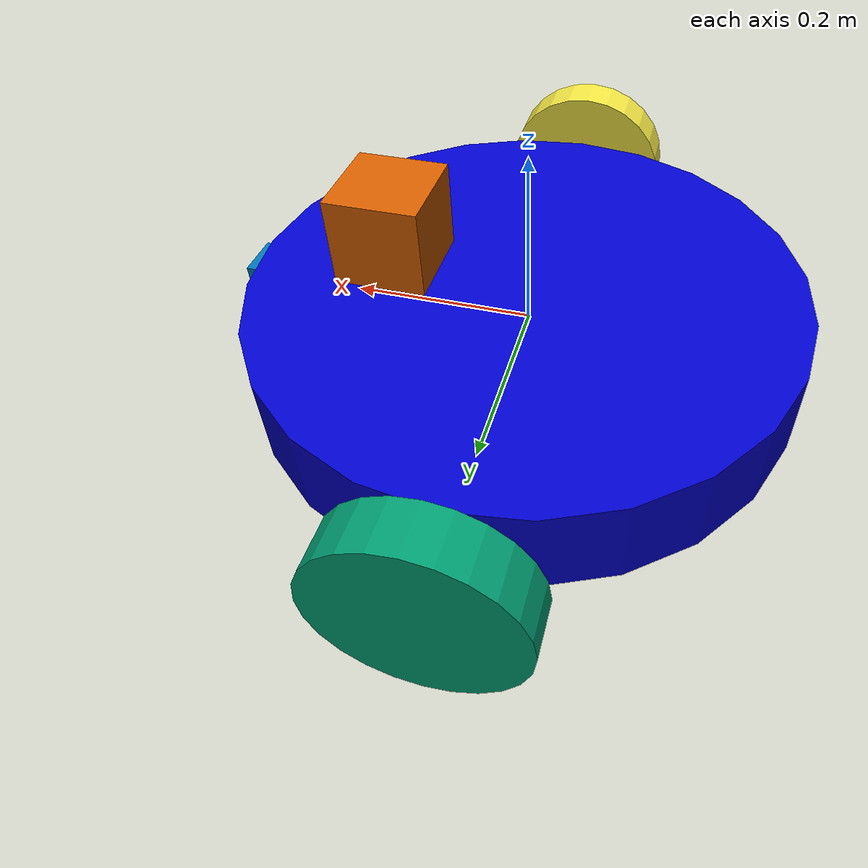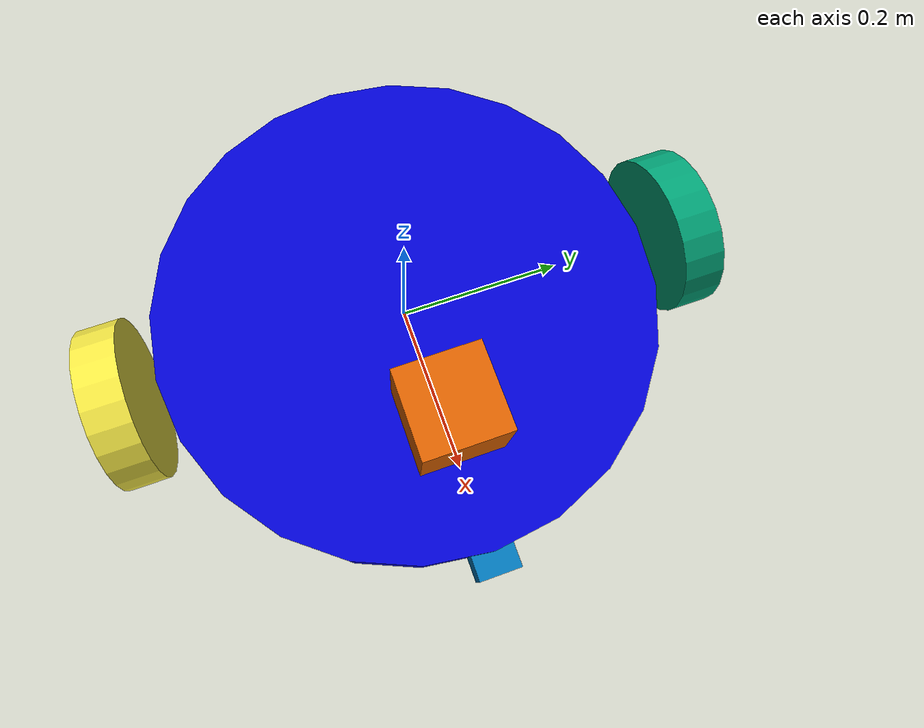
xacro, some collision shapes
<?xml version='1.0'?>

<robot name="project_robot" xmlns:xacro="http://www.ros.org/wiki/xacro">
  <xacro:include filename="$(find my_robot)/urdf/project_robot.gazebo" />

  <link name="robot_footprint"></link>

  <joint name="robot_footprint_joint" type="fixed">
    <origin xyz="0 0 0" rpy="0 0 0" />
    <parent link="robot_footprint" />
    <child link="chassis" />
  </joint>

  <link name="chassis">
    <pose>0 0 0.1 0 0 0</pose>

    <gazebo reference="chassis">
      <material>Gazebo/Blue</material>
    </gazebo>

    <inertial>
      <mass value="15.0"/>
      <origin xyz="0.0 0 0" rpy="0 0 0" />
      <inertia
        ixx="0.1" ixy="0" ixz="0"
        iyy="0.1" iyz="0"
        izz="0.1"
      />
    </inertial>

    <collision name="collision">
     <origin xyz="0 0 0" rpy="0 0 0" />
     <geometry>
       <cylinder length="0.1" radius="0.3"/>
     </geometry>
    </collision>

    <visual name="chassis_visual">
      <origin xyz="0 0 0" rpy="0 0 0" />
      <geometry>
        <cylinder length="0.1" radius="0.3"/>
      </geometry>
      <material name="blue">
        <color rgba="0 0 0.8 1" />
      </material>
    </visual>

    <collision name="back_left_caster_collision">
      <origin xyz="-0.1 -0.15 -0.05" rpy="0 0 0" />
      <geometry>
        <sphere radius="0.0499"/>
      </geometry>
    </collision>

    <visual name="back_left_caster_visual">
      <origin xyz="-0.1 -0.15 -0.05" rpy="0 0 0" />
      <geometry>
        <sphere radius="0.05"/>
      </geometry>
    </visual>

    <collision name="back_right_caster_collision">
      <origin xyz="-0.1 0.15 -0.05" rpy="0 0 0" />
      <geometry>
        <sphere radius="0.0499"/>
      </geometry>
    </collision>

    <visual name="back_right_caster_visual">
      <origin xyz="-0.1 0.15 -0.05" rpy="0 0 0" />
      <geometry>
        <sphere radius="0.05"/>
      </geometry>
    </visual>

    <collision name="front_left_caster_collision">
      <origin xyz="0.1 -0.15 -0.05" rpy="0 0 0" />
      <geometry>
        <sphere radius="0.0499"/>
      </geometry>
    </collision>

    <visual name="front_left_caster_visual">
      <origin xyz="0.1 -0.15 -0.05" rpy="0 0 0" />
      <geometry>
        <sphere radius="0.05"/>
      </geometry>
    </visual>

    <collision name="front_right_caster_collision">
      <origin xyz="0.1 0.15 -0.05" rpy="0 0 0" />
      <geometry>
        <sphere radius="0.0499"/>
      </geometry>
    </collision>

    <visual name="front_right_caster_visual">
      <origin xyz="0.1 0.15 -0.05" rpy="0 0 0" />
      <geometry>
        <sphere radius="0.05"/>
      </geometry>
    </visual>

  </link>

  <link name="left_wheel">
    <inertial>
      <origin xyz="0 0 0" rpy="0 1.5707 1.5707"/>
      <mass value="5"/>
      <inertia
          ixx="0.1" ixy="0" ixz="0"
          iyy="0.1" iyz="0"
          izz="0.1"
      />
    </inertial>

    <visual name="left_wheel_visual">
      <origin xyz="0 0 0" rpy="0 1.5707 1.5707"/>
      <geometry>
        <cylinder radius="0.1" length="0.05"/>
      </geometry>
    </visual>

    <collision name="left_wheel_collision">
      <origin xyz="0 0 0" rpy="0 1.5707 1.5707"/>
      <geometry>
        <cylinder radius="0.1" length="0.05"/>
      </geometry>
    </collision>

  </link>

  <link name="right_wheel">
    <inertial>
      <origin xyz="0 0 0" rpy="0 1.5707 1.5707"/>
      <mass value="5"/>
      <inertia
          ixx="0.1" ixy="0" ixz="0"
          iyy="0.1" iyz="0"
          izz="0.1"
      />
    </inertial>

    <visual name="right_wheel_visual">
      <origin xyz="0 0 0" rpy="0 1.5707 1.5707"/>
      <geometry>
        <cylinder radius="0.1" length="0.05"/>
      </geometry>
    </visual>

    <collision name="right_wheel_collision">
      <origin xyz="0 0 0" rpy="0 1.5707 1.5707"/>
      <geometry>
        <cylinder radius="0.1" length="0.05"/>
      </geometry>
    </collision>
  </link>
  <joint type="continuous" name="left_wheel_hinge">
    <origin xyz="0 0.35 0" rpy="0 0 0"/>
    <child link="left_wheel"/>
    <parent link="chassis"/>
    <axis xyz="0 1 0" rpy="0 0 0"/>
    <limit effort="10000" velocity="1000"/>
    <dynamics damping="1.0" friction="1.0"/>
  </joint>

  <joint type="continuous" name="right_wheel_hinge">
    <origin xyz="0 -0.35 0" rpy="0 0 0"/>
    <child link="right_wheel"/>
    <parent link="chassis"/>
    <axis xyz="0 1 0" rpy="0 0 0"/>
    <limit effort="10000" velocity="1000"/>
    <dynamics damping="1.0" friction="1.0"/>
  </joint>

  <link name="camera">
    <inertial>
      <origin xyz="0 0 0" rpy="0 0 0"/>
      <mass value="0.1"/>
      <inertia
          ixx="1e-6" ixy="0" ixz="0"
          iyy="1e-6" iyz="0"
          izz="1e-6"
      />
    </inertial>

    <visual name="camera_visual">
      <origin xyz="0 0 0" rpy="0 0 0"/>
      <geometry>
        <box size="0.05 0.05 0.05"/>
      </geometry>
    </visual>

    <collision name="camera_collision">
      <origin xyz="0 0 0" rpy="0 0 0"/>
      <geometry>
        <box size="0.05 0.05 0.05"/>
      </geometry>
    </collision>

  </link>

  <joint type="fixed" name="camera_joint">
    <origin xyz="0.3 0 0" rpy="0 0 0"/>
    <child link="camera"/>
    <parent link="chassis"/>
    <axis xyz="0 1 0" rpy="0 0 0"/>
    <limit effort="10000" velocity="1000"/>
    <dynamics damping="1.0" friction="1.0"/>
  </joint>

  <link name="hokuyo">
    <inertial>
      <origin xyz="0 0 0" rpy="0 0 0"/>
      <mass value="1e-5"/>
      <inertia
          ixx="1e-6" ixy="0" ixz="0"
          iyy="1e-6" iyz="0"
          izz="1e-6"
      />
    </inertial>

    <visual name="hokuyo_visual">
      <origin xyz="0 0 0" rpy="0 0 0"/>
      <geometry>
        <mesh filename="package://my_robot/meshes/hokuyo.dae"/>
      </geometry>
    </visual>

    <collision name="hokuyo_collision">
      <origin xyz="0 0 0" rpy="0 0 0"/>
      <geometry>
        <box size="0.1 0.1 0.1"/>
      </geometry>
    </collision>

  </link>

  <joint type="fixed" name="hokuyo_joint">
    <origin xyz="0.15 0 0.1" rpy="0 0 0"/>
    <child link="hokuyo"/>
    <parent link="chassis"/>
    <axis xyz="0 1 0" rpy="0 0 0"/>
    <limit effort="10000" velocity="1000"/>
    <dynamics damping="1.0" friction="1.0"/>
  </joint>
</robot>
